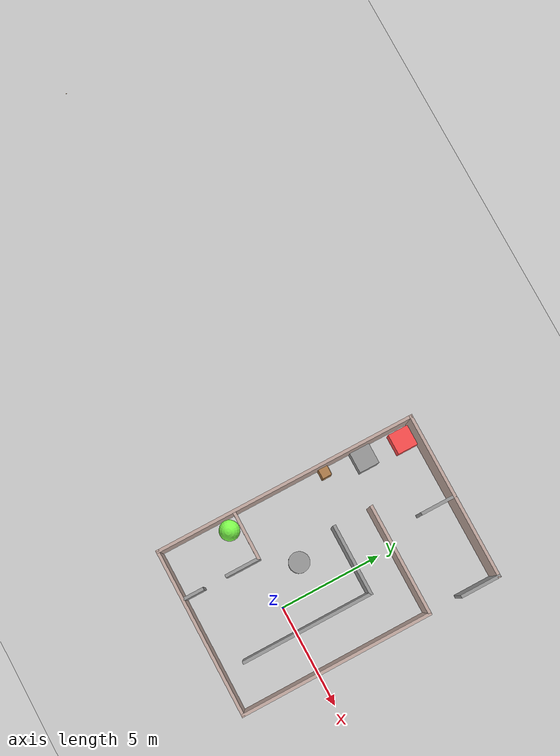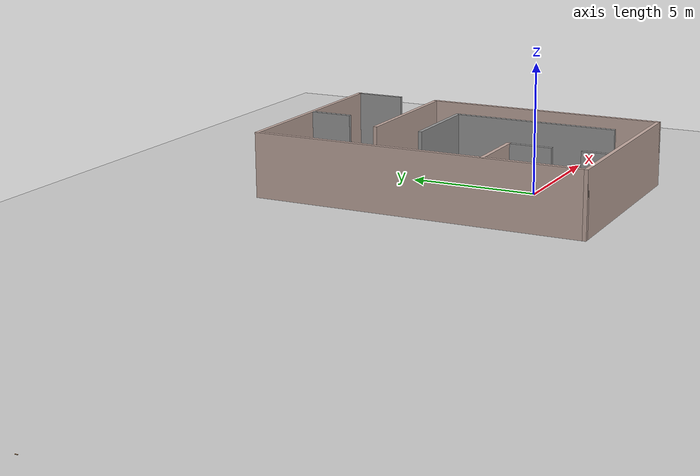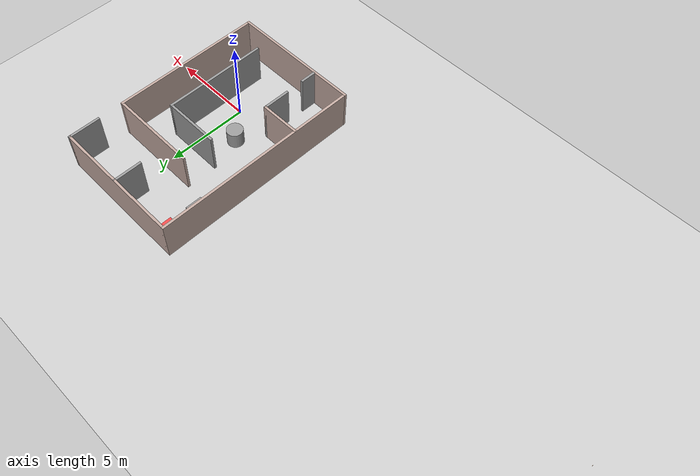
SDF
<sdf version="1.6">
 <world name="default">
  <plugin name="hello" filename="libhello.so"/>
  <light name="sun" type="directional">
   <pose>0 0 10 0 -0 0</pose>
   <diffuse>0.8 0.8 0.8 1</diffuse>
   <specular>0.2 0.2 0.2 1</specular>
   <attenuation>
    <range>1000</range>
    <constant>0.9</constant>
    <linear>0.01</linear>
    <quadratic>0.001</quadratic>
   </attenuation>
   <direction>-0.5 0.1 -0.9</direction>
  </light>
  <model name="ground_plane">
   <static>1</static>
   <link name="link">
    <collision name="collision">
     <geometry><plane><normal>0 0 1</normal><size>100 100</size></plane></geometry>
     <surface>
      <contact><collide_bitmask>65535</collide_bitmask></contact>
      <friction><ode><mu>100</mu><mu2>50</mu2></ode></friction>
     </surface>
    </collision>
    <visual name="visual">
     <cast_shadows>0</cast_shadows>
     <geometry><plane><normal>0 0 1</normal><size>100 100</size></plane></geometry>
     <material>
      <script><uri>file://media/materials/scripts/gazebo.material</uri><name>Gazebo/Grey</name></script>
     </material>
    </visual>
   </link>
  </model>
  <gravity>0 0 -9.8</gravity>
  <magnetic_field>6e-06 2.3e-05 -4.2e-05</magnetic_field>
  <atmosphere type="adiabatic"/>
  <physics name="default_physics" default="0" type="ode">
   <max_step_size>0.001</max_step_size>
   <real_time_factor>1</real_time_factor>
   <real_time_update_rate>1000</real_time_update_rate>
  </physics>
  <scene><ambient>0.4 0.4 0.4 1</ambient><background>0.7 0.7 0.7 1</background><shadows>1</shadows></scene>
  <audio><device>default</device></audio>
  <spherical_coordinates>
   <surface_model>EARTH_WGS84</surface_model>
   <latitude_deg>0</latitude_deg>
   <longitude_deg>0</longitude_deg>
   <elevation>0</elevation>
   <heading_deg>0</heading_deg>
  </spherical_coordinates>
  <model name="wooden_peg">
   <link name="link">
    <pose>0 0 0.04 0 -0 0</pose>
    <inertial>
     <mass>0.0175</mass>
     <inertia>
      <ixx>9.74923e-06</ixx>
      <ixy>0</ixy>
      <ixz>0</ixz>
      <iyy>9.74923e-06</iyy>
      <iyz>0</iyz>
      <izz>8.31797e-07</izz>
     </inertia>
    </inertial>
    <collision name="collision">
     <geometry><cylinder><radius>0.00975</radius><length>0.08</length></cylinder></geometry>
     <surface>
      <contact>
       <poissons_ratio>0.347</poissons_ratio>
       <elastic_modulus>8.8e+09</elastic_modulus>
       <ode><kp>100000</kp><kd>100</kd><max_vel>100</max_vel><min_depth>0.001</min_depth></ode>
      </contact>
      <friction>
       <torsional>
        <coefficient>1</coefficient>
        <use_patch_radius>0</use_patch_radius>
        <surface_radius>0.01</surface_radius>
       </torsional>
      </friction>
     </surface>
    </collision>
    <visual name="visual">
     <geometry><cylinder><radius>0.00975</radius><length>0.08</length></cylinder></geometry>
     <material>
      <script><uri>file://media/materials/scripts/gazebo.material</uri><name>Gazebo/Wood</name></script>
     </material>
    </visual>
   </link>
   <pose>-26.5131 2.34134 0.008749 1.5708 0.237397 3.10113</pose>
  </model>
  <model name="cabinet_0_clone_clone">
   <static>1</static>
   <link name="cabinet_bottom_plate">
    <inertial>
     <pose>0 0 -1 0 -0 0</pose>
     <inertia><ixx>2.05</ixx><ixy>0</ixy><ixz>0</ixz><iyy>2.05</iyy><iyz>0</iyz><izz>2.05</izz></inertia>
     <mass>25</mass>
    </inertial>
    <collision name="cabinet_bottom_plate_geom">
     <pose>0 0 0.01 0 -0 0</pose>
     <geometry><box><size>0.45 0.45 0.02</size></box></geometry>
    </collision>
    <visual name="cabinet_bottom_plate_geom_visual">
     <pose>0 0 0.01 0 -0 0</pose>
     <geometry><box><size>0.45 0.45 0.02</size></box></geometry>
     <material>
      <script><uri>file://media/materials/scripts/gazebo.material</uri><name>Gazebo/Wood</name></script>
     </material>
    </visual>
    <collision name="cabinet_bottom_plate_geom_cabinet_back_plate">
     <pose>0.235 0 0.51 0 -0 0</pose>
     <geometry><box><size>0.02 0.45 1.02</size></box></geometry>
    </collision>
    <visual name="cabinet_bottom_plate_geom_cabinet_back_plate_visual">
     <pose>0.235 0 0.51 0 -0 0</pose>
     <geometry><box><size>0.02 0.45 1.02</size></box></geometry>
     <material>
      <script><uri>file://media/materials/scripts/gazebo.material</uri><name>Gazebo/Wood</name></script>
     </material>
    </visual>
    <collision name="cabinet_bottom_plate_geom_cabinet_left_plate">
     <pose>0 0.235 0.51 0 -0 0</pose>
     <geometry><box><size>0.45 0.02 1.02</size></box></geometry>
    </collision>
    <visual name="cabinet_bottom_plate_geom_cabinet_left_plate_visual">
     <pose>0 0.235 0.51 0 -0 0</pose>
     <geometry><box><size>0.45 0.02 1.02</size></box></geometry>
     <material>
      <script><uri>file://media/materials/scripts/gazebo.material</uri><name>Gazebo/Wood</name></script>
     </material>
    </visual>
    <collision name="cabinet_bottom_plate_geom_cabinet_middle_plate">
     <pose>0 0 0.51 0 -0 0</pose>
     <geometry><box><size>0.45 0.45 0.02</size></box></geometry>
    </collision>
    <visual name="cabinet_bottom_plate_geom_cabinet_middle_plate_visual">
     <pose>0 0 0.51 0 -0 0</pose>
     <geometry><box><size>0.45 0.45 0.02</size></box></geometry>
     <material>
      <script><uri>file://media/materials/scripts/gazebo.material</uri><name>Gazebo/Wood</name></script>
     </material>
    </visual>
    <collision name="cabinet_bottom_plate_geom_cabinet_right_plate">
     <pose>0 -0.235 0.51 0 -0 0</pose>
     <geometry><box><size>0.45 0.02 1.02</size></box></geometry>
    </collision>
    <visual name="cabinet_bottom_plate_geom_cabinet_right_plate_visual">
     <pose>0 -0.235 0.51 0 -0 0</pose>
     <geometry><box><size>0.45 0.02 1.02</size></box></geometry>
     <material>
      <script><uri>file://media/materials/scripts/gazebo.material</uri><name>Gazebo/Wood</name></script>
     </material>
    </visual>
    <collision name="cabinet_bottom_plate_geom_cabinet_top_plate">
     <pose>0 0 1.01 0 -0 0</pose>
     <geometry><box><size>0.45 0.45 0.02</size></box></geometry>
    </collision>
    <visual name="cabinet_bottom_plate_geom_cabinet_top_plate_visual">
     <pose>0 0 1.01 0 -0 0</pose>
     <geometry><box><size>0.45 0.45 0.02</size></box></geometry>
     <material>
      <script><uri>file://media/materials/scripts/gazebo.material</uri><name>Gazebo/Wood</name></script>
     </material>
    </visual>
   </link>
   <pose>-4.51006 4.59978 0 0 -0 0</pose>
  </model>
  <model name="unit_box_1_0">
   <link name="link">
    <inertial>
     <mass>1</mass>
     <inertia>
      <ixx>0.166667</ixx>
      <ixy>0</ixy>
      <ixz>0</ixz>
      <iyy>0.166667</iyy>
      <iyz>0</iyz>
      <izz>0.166667</izz>
     </inertia>
    </inertial>
    <visual name="visual">
     <geometry><box><size>1 1 1</size></box></geometry>
     <material>
      <script><name>Gazebo/Grey</name><uri>file://media/materials/scripts/gazebo.material</uri></script>
      <ambient>1 0.3 0.3 1</ambient>
      <diffuse>0.7 0.7 0.7 1</diffuse>
      <specular>0.01 0.01 0.01 1</specular>
      <emissive>0 0 0 1</emissive>
      <shader type="vertex"><normal_map>__default__</normal_map></shader>
     </material>
    </visual>
    <collision name="collision">
     <geometry><box><size>1 1 1</size></box></geometry>
     <surface>
      <friction>
       <ode><mu>1</mu><mu2>1</mu2><fdir1>0 0 0</fdir1><slip1>0</slip1><slip2>0</slip2></ode>
       <torsional>
        <coefficient>1</coefficient>
        <patch_radius>0</patch_radius>
        <surface_radius>0</surface_radius>
        <use_patch_radius>1</use_patch_radius>
        <ode><slip>0</slip></ode>
       </torsional>
      </friction>
      <bounce><restitution_coefficient>0</restitution_coefficient><threshold>1e+06</threshold></bounce>
      <contact>
       <collide_without_contact>0</collide_without_contact>
       <collide_without_contact_bitmask>1</collide_without_contact_bitmask>
       <collide_bitmask>1</collide_bitmask>
       <ode>
        <soft_cfm>0</soft_cfm>
        <soft_erp>0.2</soft_erp>
        <kp>1e+13</kp>
        <kd>1</kd>
        <max_vel>0.01</max_vel>
        <min_depth>0</min_depth>
       </ode>
       <bullet>
        <split_impulse>1</split_impulse>
        <split_impulse_penetration_threshold>-0.01</split_impulse_penetration_threshold>
        <soft_cfm>0</soft_cfm>
        <soft_erp>0.2</soft_erp>
        <kp>1e+13</kp>
        <kd>1</kd>
       </bullet>
      </contact>
     </surface>
    </collision>
   </link>
   <static>0</static>
   <pose>-4.14081 8.46994 0.499995 -1e-05 -0 2e-06</pose>
  </model>
  <model name="unit_sphere_0_0">
   <link name="link">
    <inertial>
     <mass>1</mass>
     <inertia><ixx>0.1</ixx><ixy>0</ixy><ixz>0</ixz><iyy>0.1</iyy><iyz>0</iyz><izz>0.1</izz></inertia>
    </inertial>
    <visual name="visual">
     <geometry><sphere><radius>0.5</radius></sphere></geometry>
     <material>
      <script><name>Gazebo/Grey</name><uri>file://media/materials/scripts/gazebo.material</uri></script>
      <ambient>0.5 1 0.3 1</ambient>
      <diffuse>0.7 0.7 0.7 1</diffuse>
      <specular>0.01 0.01 0.01 1</specular>
      <emissive>0 0 0 1</emissive>
      <shader type="vertex"><normal_map>__default__</normal_map></shader>
     </material>
    </visual>
    <collision name="collision">
     <geometry><sphere><radius>0.5</radius></sphere></geometry>
     <surface>
      <friction>
       <ode><mu>1</mu><mu2>1</mu2><fdir1>0 0 0</fdir1><slip1>0</slip1><slip2>0</slip2></ode>
       <torsional>
        <coefficient>1</coefficient>
        <patch_radius>0</patch_radius>
        <surface_radius>0</surface_radius>
        <use_patch_radius>1</use_patch_radius>
        <ode><slip>0</slip></ode>
       </torsional>
      </friction>
      <bounce><restitution_coefficient>0</restitution_coefficient><threshold>1e+06</threshold></bounce>
      <contact>
       <collide_without_contact>0</collide_without_contact>
       <collide_without_contact_bitmask>1</collide_without_contact_bitmask>
       <collide_bitmask>1</collide_bitmask>
       <ode>
        <soft_cfm>0</soft_cfm>
        <soft_erp>0.2</soft_erp>
        <kp>1e+13</kp>
        <kd>1</kd>
        <max_vel>0.01</max_vel>
        <min_depth>0</min_depth>
       </ode>
       <bullet>
        <split_impulse>1</split_impulse>
        <split_impulse_penetration_threshold>-0.01</split_impulse_penetration_threshold>
        <soft_cfm>0</soft_cfm>
        <soft_erp>0.2</soft_erp>
        <kp>1e+13</kp>
        <kd>1</kd>
       </bullet>
      </contact>
     </surface>
    </collision>
   </link>
   <static>0</static>
   <pose>-4.23931 -0.500517 0.5 0.165014 0.102597 0.003022</pose>
  </model>
  <model name="unit_box_0">
   <pose>-4.22387 6.50474 0.499995 0 1e-05 0.00041</pose>
   <link name="link">
    <inertial>
     <mass>1</mass>
     <inertia>
      <ixx>0.166667</ixx>
      <ixy>0</ixy>
      <ixz>0</ixz>
      <iyy>0.166667</iyy>
      <iyz>0</iyz>
      <izz>0.166667</izz>
     </inertia>
    </inertial>
    <collision name="collision"><geometry><box><size>1 1 1</size></box></geometry></collision>
    <visual name="visual">
     <geometry><box><size>1 1 1</size></box></geometry>
     <material>
      <script><name>Gazebo/Grey</name><uri>file://media/materials/scripts/gazebo.material</uri></script>
     </material>
    </visual>
   </link>
  </model>
  <model name="unit_cylinder_1_0">
   <link name="link">
    <inertial>
     <mass>1</mass>
     <inertia><ixx>0.145833</ixx><ixy>0</ixy><ixz>0</ixz><iyy>0.145833</iyy><iyz>0</iyz><izz>0.125</izz></inertia>
    </inertial>
    <visual name="visual">
     <geometry><cylinder><radius>0.5</radius><length>1</length></cylinder></geometry>
     <material>
      <script><name>Gazebo/Grey</name><uri>file://media/materials/scripts/gazebo.material</uri></script>
      <ambient>1 1 1 1</ambient>
      <diffuse>0.7 0.7 0.7 1</diffuse>
      <specular>0.01 0.01 0.01 1</specular>
      <emissive>0 0 0 1</emissive>
      <shader type="vertex"><normal_map>__default__</normal_map></shader>
     </material>
    </visual>
    <collision name="collision">
     <geometry><cylinder><radius>0.5</radius><length>1</length></cylinder></geometry>
     <surface>
      <friction>
       <ode><mu>1</mu><mu2>1</mu2><fdir1>0 0 0</fdir1><slip1>0</slip1><slip2>0</slip2></ode>
       <torsional>
        <coefficient>1</coefficient>
        <patch_radius>0</patch_radius>
        <surface_radius>0</surface_radius>
        <use_patch_radius>1</use_patch_radius>
        <ode><slip>0</slip></ode>
       </torsional>
      </friction>
      <bounce><restitution_coefficient>0</restitution_coefficient><threshold>1e+06</threshold></bounce>
      <contact>
       <collide_without_contact>0</collide_without_contact>
       <collide_without_contact_bitmask>1</collide_without_contact_bitmask>
       <collide_bitmask>1</collide_bitmask>
       <ode>
        <soft_cfm>0</soft_cfm>
        <soft_erp>0.2</soft_erp>
        <kp>1e+13</kp>
        <kd>1</kd>
        <max_vel>0.01</max_vel>
        <min_depth>0</min_depth>
       </ode>
       <bullet>
        <split_impulse>1</split_impulse>
        <split_impulse_penetration_threshold>-0.01</split_impulse_penetration_threshold>
        <soft_cfm>0</soft_cfm>
        <soft_erp>0.2</soft_erp>
        <kp>1e+13</kp>
        <kd>1</kd>
       </bullet>
      </contact>
     </surface>
    </collision>
   </link>
   <static>0</static>
   <pose>-1.45051 1.6207 0.499998 3e-06 3e-06 -0.02605</pose>
  </model>
  <model name="building_0">
   <link name="Wall_19">
    <pose>5.63923 -6.425 0 0 -0 0</pose>
    <visual name="Wall_19_Visual">
     <pose>0 0 1.25 0 -0 0</pose>
     <geometry><box><size>8.25 0.15 2.5</size></box></geometry>
     <material>
      <script><uri>file://media/materials/scripts/gazebo.material</uri><name>Gazebo/Grey</name></script>
      <ambient>0.760784 0.662745 0.627451 1</ambient>
      <diffuse>0.7 0.7 0.7 1</diffuse>
      <specular>0.01 0.01 0.01 1</specular>
      <emissive>0 0 0 1</emissive>
     </material>
    </visual>
    <collision name="Wall_19_Collision">
     <pose>0 0 1.25 0 -0 0</pose>
     <geometry><box><size>8.25 0.15 2.5</size></box></geometry>
     <surface>
      <friction>
       <ode><mu>1</mu><mu2>1</mu2><fdir1>0 0 0</fdir1><slip1>0</slip1><slip2>0</slip2></ode>
       <torsional>
        <coefficient>1</coefficient>
        <patch_radius>0</patch_radius>
        <surface_radius>0</surface_radius>
        <use_patch_radius>1</use_patch_radius>
        <ode><slip>0</slip></ode>
       </torsional>
      </friction>
      <bounce><restitution_coefficient>0</restitution_coefficient><threshold>1e+06</threshold></bounce>
      <contact>
       <collide_without_contact>0</collide_without_contact>
       <collide_without_contact_bitmask>1</collide_without_contact_bitmask>
       <collide_bitmask>1</collide_bitmask>
       <ode>
        <soft_cfm>0</soft_cfm>
        <soft_erp>0.2</soft_erp>
        <kp>1e+13</kp>
        <kd>1</kd>
        <max_vel>0.01</max_vel>
        <min_depth>0</min_depth>
       </ode>
       <bullet>
        <split_impulse>1</split_impulse>
        <split_impulse_penetration_threshold>-0.01</split_impulse_penetration_threshold>
        <soft_cfm>0</soft_cfm>
        <soft_erp>0.2</soft_erp>
        <kp>1e+13</kp>
        <kd>1</kd>
       </bullet>
      </contact>
     </surface>
    </collision>
   </link>
   <link name="Wall_20">
    <pose>9.68923 -1.75 0 0 -0 1.5708</pose>
    <visual name="Wall_20_Visual">
     <pose>0 0 1.25 0 -0 0</pose>
     <geometry><box><size>9.5 0.15 2.5</size></box></geometry>
     <material>
      <script><uri>file://media/materials/scripts/gazebo.material</uri><name>Gazebo/Grey</name></script>
      <ambient>0.760784 0.662745 0.627451 1</ambient>
      <diffuse>0.7 0.7 0.7 1</diffuse>
      <specular>0.01 0.01 0.01 1</specular>
      <emissive>0 0 0 1</emissive>
     </material>
    </visual>
    <collision name="Wall_20_Collision">
     <pose>0 0 1.25 0 -0 0</pose>
     <geometry><box><size>9.5 0.15 2.5</size></box></geometry>
     <surface>
      <friction>
       <ode><mu>1</mu><mu2>1</mu2><fdir1>0 0 0</fdir1><slip1>0</slip1><slip2>0</slip2></ode>
       <torsional>
        <coefficient>1</coefficient>
        <patch_radius>0</patch_radius>
        <surface_radius>0</surface_radius>
        <use_patch_radius>1</use_patch_radius>
        <ode><slip>0</slip></ode>
       </torsional>
      </friction>
      <bounce><restitution_coefficient>0</restitution_coefficient><threshold>1e+06</threshold></bounce>
      <contact>
       <collide_without_contact>0</collide_without_contact>
       <collide_without_contact_bitmask>1</collide_without_contact_bitmask>
       <collide_bitmask>1</collide_bitmask>
       <ode>
        <soft_cfm>0</soft_cfm>
        <soft_erp>0.2</soft_erp>
        <kp>1e+13</kp>
        <kd>1</kd>
        <max_vel>0.01</max_vel>
        <min_depth>0</min_depth>
       </ode>
       <bullet>
        <split_impulse>1</split_impulse>
        <split_impulse_penetration_threshold>-0.01</split_impulse_penetration_threshold>
        <soft_cfm>0</soft_cfm>
        <soft_erp>0.2</soft_erp>
        <kp>1e+13</kp>
        <kd>1</kd>
       </bullet>
      </contact>
     </surface>
    </collision>
   </link>
   <link name="Wall_21">
    <pose>7.01423 2.925 0 0 -0 3.14159</pose>
    <visual name="Wall_21_Visual">
     <pose>0 0 1.25 0 -0 0</pose>
     <geometry><box><size>5.5 0.15 2.5</size></box></geometry>
     <material>
      <script><uri>file://media/materials/scripts/gazebo.material</uri><name>Gazebo/Grey</name></script>
      <ambient>0.760784 0.662745 0.627451 1</ambient>
      <diffuse>0.7 0.7 0.7 1</diffuse>
      <specular>0.01 0.01 0.01 1</specular>
      <emissive>0 0 0 1</emissive>
     </material>
    </visual>
    <collision name="Wall_21_Collision">
     <pose>0 0 1.25 0 -0 0</pose>
     <geometry><box><size>5.5 0.15 2.5</size></box></geometry>
     <surface>
      <friction>
       <ode><mu>1</mu><mu2>1</mu2><fdir1>0 0 0</fdir1><slip1>0</slip1><slip2>0</slip2></ode>
       <torsional>
        <coefficient>1</coefficient>
        <patch_radius>0</patch_radius>
        <surface_radius>0</surface_radius>
        <use_patch_radius>1</use_patch_radius>
        <ode><slip>0</slip></ode>
       </torsional>
      </friction>
      <bounce><restitution_coefficient>0</restitution_coefficient><threshold>1e+06</threshold></bounce>
      <contact>
       <collide_without_contact>0</collide_without_contact>
       <collide_without_contact_bitmask>1</collide_without_contact_bitmask>
       <collide_bitmask>1</collide_bitmask>
       <ode>
        <soft_cfm>0</soft_cfm>
        <soft_erp>0.2</soft_erp>
        <kp>1e+13</kp>
        <kd>1</kd>
        <max_vel>0.01</max_vel>
        <min_depth>0</min_depth>
       </ode>
       <bullet>
        <split_impulse>1</split_impulse>
        <split_impulse_penetration_threshold>-0.01</split_impulse_penetration_threshold>
        <soft_cfm>0</soft_cfm>
        <soft_erp>0.2</soft_erp>
        <kp>1e+13</kp>
        <kd>1</kd>
       </bullet>
      </contact>
     </surface>
    </collision>
   </link>
   <link name="Wall_23">
    <pose>1.58923 0 0 0 -0 1.5708</pose>
    <visual name="Wall_23_Visual">
     <pose>0 0 1.25 0 -0 0</pose>
     <geometry><box><size>13 0.15 2.5</size></box></geometry>
     <material>
      <script><uri>file://media/materials/scripts/gazebo.material</uri><name>Gazebo/Grey</name></script>
      <ambient>0.760784 0.662745 0.627451 1</ambient>
      <diffuse>0.7 0.7 0.7 1</diffuse>
      <specular>0.01 0.01 0.01 1</specular>
      <emissive>0 0 0 1</emissive>
     </material>
    </visual>
    <collision name="Wall_23_Collision">
     <pose>0 0 1.25 0 -0 0</pose>
     <geometry><box><size>13 0.15 2.5</size></box></geometry>
     <surface>
      <friction>
       <ode><mu>1</mu><mu2>1</mu2><fdir1>0 0 0</fdir1><slip1>0</slip1><slip2>0</slip2></ode>
       <torsional>
        <coefficient>1</coefficient>
        <patch_radius>0</patch_radius>
        <surface_radius>0</surface_radius>
        <use_patch_radius>1</use_patch_radius>
        <ode><slip>0</slip></ode>
       </torsional>
      </friction>
      <bounce><restitution_coefficient>0</restitution_coefficient><threshold>1e+06</threshold></bounce>
      <contact>
       <collide_without_contact>0</collide_without_contact>
       <collide_without_contact_bitmask>1</collide_without_contact_bitmask>
       <collide_bitmask>1</collide_bitmask>
       <ode>
        <soft_cfm>0</soft_cfm>
        <soft_erp>0.2</soft_erp>
        <kp>1e+13</kp>
        <kd>1</kd>
        <max_vel>0.01</max_vel>
        <min_depth>0</min_depth>
       </ode>
       <bullet>
        <split_impulse>1</split_impulse>
        <split_impulse_penetration_threshold>-0.01</split_impulse_penetration_threshold>
        <soft_cfm>0</soft_cfm>
        <soft_erp>0.2</soft_erp>
        <kp>1e+13</kp>
        <kd>1</kd>
       </bullet>
      </contact>
     </surface>
    </collision>
   </link>
   <link name="Wall_24">
    <pose>5.63923 6.425 0 0 -0 0</pose>
    <visual name="Wall_24_Visual">
     <pose>0 0 1.25 0 -0 0</pose>
     <geometry><box><size>8.25 0.15 2.5</size></box></geometry>
     <material>
      <script><uri>file://media/materials/scripts/gazebo.material</uri><name>Gazebo/Grey</name></script>
      <ambient>0.760784 0.662745 0.627451 1</ambient>
      <diffuse>0.7 0.7 0.7 1</diffuse>
      <specular>0.01 0.01 0.01 1</specular>
      <emissive>0 0 0 1</emissive>
     </material>
    </visual>
    <collision name="Wall_24_Collision">
     <pose>0 0 1.25 0 -0 0</pose>
     <geometry><box><size>8.25 0.15 2.5</size></box></geometry>
     <surface>
      <friction>
       <ode><mu>1</mu><mu2>1</mu2><fdir1>0 0 0</fdir1><slip1>0</slip1><slip2>0</slip2></ode>
       <torsional>
        <coefficient>1</coefficient>
        <patch_radius>0</patch_radius>
        <surface_radius>0</surface_radius>
        <use_patch_radius>1</use_patch_radius>
        <ode><slip>0</slip></ode>
       </torsional>
      </friction>
      <bounce><restitution_coefficient>0</restitution_coefficient><threshold>1e+06</threshold></bounce>
      <contact>
       <collide_without_contact>0</collide_without_contact>
       <collide_without_contact_bitmask>1</collide_without_contact_bitmask>
       <collide_bitmask>1</collide_bitmask>
       <ode>
        <soft_cfm>0</soft_cfm>
        <soft_erp>0.2</soft_erp>
        <kp>1e+13</kp>
        <kd>1</kd>
        <max_vel>0.01</max_vel>
        <min_depth>0</min_depth>
       </ode>
       <bullet>
        <split_impulse>1</split_impulse>
        <split_impulse_penetration_threshold>-0.01</split_impulse_penetration_threshold>
        <soft_cfm>0</soft_cfm>
        <soft_erp>0.2</soft_erp>
        <kp>1e+13</kp>
        <kd>1</kd>
       </bullet>
      </contact>
     </surface>
    </collision>
   </link>
   <link name="Wall_25">
    <pose>9.68923 5.5 0 0 0 -1.5708</pose>
    <visual name="Wall_25_Visual">
     <pose>0 0 1.25 0 -0 0</pose>
     <geometry><box><size>2 0.15 2.5</size></box></geometry>
     <material>
      <script><uri>file://media/materials/scripts/gazebo.material</uri><name>Gazebo/Grey</name></script>
      <ambient>0 0 0 1</ambient>
      <diffuse>0.7 0.7 0.7 1</diffuse>
      <specular>0.01 0.01 0.01 1</specular>
      <emissive>0 0 0 1</emissive>
     </material>
    </visual>
    <collision name="Wall_25_Collision">
     <pose>0 0 1.25 0 -0 0</pose>
     <geometry><box><size>2 0.15 2.5</size></box></geometry>
     <surface>
      <friction>
       <ode><mu>1</mu><mu2>1</mu2><fdir1>0 0 0</fdir1><slip1>0</slip1><slip2>0</slip2></ode>
       <torsional>
        <coefficient>1</coefficient>
        <patch_radius>0</patch_radius>
        <surface_radius>0</surface_radius>
        <use_patch_radius>1</use_patch_radius>
        <ode><slip>0</slip></ode>
       </torsional>
      </friction>
      <bounce><restitution_coefficient>0</restitution_coefficient><threshold>1e+06</threshold></bounce>
      <contact>
       <collide_without_contact>0</collide_without_contact>
       <collide_without_contact_bitmask>1</collide_without_contact_bitmask>
       <collide_bitmask>1</collide_bitmask>
       <ode>
        <soft_cfm>0</soft_cfm>
        <soft_erp>0.2</soft_erp>
        <kp>1e+13</kp>
        <kd>1</kd>
        <max_vel>0.01</max_vel>
        <min_depth>0</min_depth>
       </ode>
       <bullet>
        <split_impulse>1</split_impulse>
        <split_impulse_penetration_threshold>-0.01</split_impulse_penetration_threshold>
        <soft_cfm>0</soft_cfm>
        <soft_erp>0.2</soft_erp>
        <kp>1e+13</kp>
        <kd>1</kd>
       </bullet>
      </contact>
     </surface>
    </collision>
   </link>
   <link name="Wall_28">
    <pose>6.00799 1.04651 0 0 -0 0</pose>
    <visual name="Wall_28_Visual">
     <pose>0 0 1.25 0 -0 0</pose>
     <geometry><box><size>3.5 0.15 2.5</size></box></geometry>
     <material>
      <script><uri>file://media/materials/scripts/gazebo.material</uri><name>Gazebo/Grey</name></script>
      <ambient>0 0 0 1</ambient>
      <diffuse>0.7 0.7 0.7 1</diffuse>
      <specular>0.01 0.01 0.01 1</specular>
      <emissive>0 0 0 1</emissive>
     </material>
    </visual>
    <collision name="Wall_28_Collision">
     <pose>0 0 1.25 0 -0 0</pose>
     <geometry><box><size>3.5 0.15 2.5</size></box></geometry>
     <surface>
      <friction>
       <ode><mu>1</mu><mu2>1</mu2><fdir1>0 0 0</fdir1><slip1>0</slip1><slip2>0</slip2></ode>
       <torsional>
        <coefficient>1</coefficient>
        <patch_radius>0</patch_radius>
        <surface_radius>0</surface_radius>
        <use_patch_radius>1</use_patch_radius>
        <ode><slip>0</slip></ode>
       </torsional>
      </friction>
      <bounce><restitution_coefficient>0</restitution_coefficient><threshold>1e+06</threshold></bounce>
      <contact>
       <collide_without_contact>0</collide_without_contact>
       <collide_without_contact_bitmask>1</collide_without_contact_bitmask>
       <collide_bitmask>1</collide_bitmask>
       <ode>
        <soft_cfm>0</soft_cfm>
        <soft_erp>0.2</soft_erp>
        <kp>1e+13</kp>
        <kd>1</kd>
        <max_vel>0.01</max_vel>
        <min_depth>0</min_depth>
       </ode>
       <bullet>
        <split_impulse>1</split_impulse>
        <split_impulse_penetration_threshold>-0.01</split_impulse_penetration_threshold>
        <soft_cfm>0</soft_cfm>
        <soft_erp>0.2</soft_erp>
        <kp>1e+13</kp>
        <kd>1</kd>
       </bullet>
      </contact>
     </surface>
    </collision>
   </link>
   <link name="Wall_30">
    <pose>7.68299 -2.12849 0 0 0 -1.5708</pose>
    <visual name="Wall_30_Visual">
     <pose>0 0 1.25 0 -0 0</pose>
     <geometry><box><size>6.5 0.15 2.5</size></box></geometry>
     <material>
      <script><uri>file://media/materials/scripts/gazebo.material</uri><name>Gazebo/Grey</name></script>
      <ambient>0 0 0 1</ambient>
      <diffuse>0.7 0.7 0.7 1</diffuse>
      <specular>0.01 0.01 0.01 1</specular>
      <emissive>0 0 0 1</emissive>
     </material>
    </visual>
    <collision name="Wall_30_Collision">
     <pose>0 0 1.25 0 -0 0</pose>
     <geometry><box><size>6.5 0.15 2.5</size></box></geometry>
     <surface>
      <friction>
       <ode><mu>1</mu><mu2>1</mu2><fdir1>0 0 0</fdir1><slip1>0</slip1><slip2>0</slip2></ode>
       <torsional>
        <coefficient>1</coefficient>
        <patch_radius>0</patch_radius>
        <surface_radius>0</surface_radius>
        <use_patch_radius>1</use_patch_radius>
        <ode><slip>0</slip></ode>
       </torsional>
      </friction>
      <bounce><restitution_coefficient>0</restitution_coefficient><threshold>1e+06</threshold></bounce>
      <contact>
       <collide_without_contact>0</collide_without_contact>
       <collide_without_contact_bitmask>1</collide_without_contact_bitmask>
       <collide_bitmask>1</collide_bitmask>
       <ode>
        <soft_cfm>0</soft_cfm>
        <soft_erp>0.2</soft_erp>
        <kp>1e+13</kp>
        <kd>1</kd>
        <max_vel>0.01</max_vel>
        <min_depth>0</min_depth>
       </ode>
       <bullet>
        <split_impulse>1</split_impulse>
        <split_impulse_penetration_threshold>-0.01</split_impulse_penetration_threshold>
        <soft_cfm>0</soft_cfm>
        <soft_erp>0.2</soft_erp>
        <kp>1e+13</kp>
        <kd>1</kd>
       </bullet>
      </contact>
     </surface>
    </collision>
   </link>
   <link name="Wall_35">
    <pose>2.79656 -2.60704 0 0 -0 0</pose>
    <visual name="Wall_35_Visual">
     <pose>0 0 1.25 0 -0 0</pose>
     <geometry><box><size>2.5 0.15 2.5</size></box></geometry>
     <material>
      <script><uri>file://media/materials/scripts/gazebo.material</uri><name>Gazebo/Grey</name></script>
      <ambient>0.760784 0.662745 0.627451 1</ambient>
      <diffuse>0.7 0.7 0.7 1</diffuse>
      <specular>0.01 0.01 0.01 1</specular>
      <emissive>0 0 0 1</emissive>
     </material>
    </visual>
    <collision name="Wall_35_Collision">
     <pose>0 0 1.25 0 -0 0</pose>
     <geometry><box><size>2.5 0.15 2.5</size></box></geometry>
     <surface>
      <friction>
       <ode><mu>1</mu><mu2>1</mu2><fdir1>0 0 0</fdir1><slip1>0</slip1><slip2>0</slip2></ode>
       <torsional>
        <coefficient>1</coefficient>
        <patch_radius>0</patch_radius>
        <surface_radius>0</surface_radius>
        <use_patch_radius>1</use_patch_radius>
        <ode><slip>0</slip></ode>
       </torsional>
      </friction>
      <bounce><restitution_coefficient>0</restitution_coefficient><threshold>1e+06</threshold></bounce>
      <contact>
       <collide_without_contact>0</collide_without_contact>
       <collide_without_contact_bitmask>1</collide_without_contact_bitmask>
       <collide_bitmask>1</collide_bitmask>
       <ode>
        <soft_cfm>0</soft_cfm>
        <soft_erp>0.2</soft_erp>
        <kp>1e+13</kp>
        <kd>1</kd>
        <max_vel>0.01</max_vel>
        <min_depth>0</min_depth>
       </ode>
       <bullet>
        <split_impulse>1</split_impulse>
        <split_impulse_penetration_threshold>-0.01</split_impulse_penetration_threshold>
        <soft_cfm>0</soft_cfm>
        <soft_erp>0.2</soft_erp>
        <kp>1e+13</kp>
        <kd>1</kd>
       </bullet>
      </contact>
     </surface>
    </collision>
   </link>
   <link name="Wall_36">
    <pose>3.97156 -3.40704 0 0 0 -1.5708</pose>
    <visual name="Wall_36_Visual">
     <pose>0 0 1.25 0 -0 0</pose>
     <geometry><box><size>1.75 0.15 2.5</size></box></geometry>
     <material>
      <script><uri>file://media/materials/scripts/gazebo.material</uri><name>Gazebo/Grey</name></script>
      <ambient>0 0 0 1</ambient>
      <diffuse>0.7 0.7 0.7 1</diffuse>
      <specular>0.01 0.01 0.01 1</specular>
      <emissive>0 0 0 1</emissive>
     </material>
    </visual>
    <collision name="Wall_36_Collision">
     <pose>0 0 1.25 0 -0 0</pose>
     <geometry><box><size>1.75 0.15 2.5</size></box></geometry>
     <surface>
      <friction>
       <ode><mu>1</mu><mu2>1</mu2><fdir1>0 0 0</fdir1><slip1>0</slip1><slip2>0</slip2></ode>
       <torsional>
        <coefficient>1</coefficient>
        <patch_radius>0</patch_radius>
        <surface_radius>0</surface_radius>
        <use_patch_radius>1</use_patch_radius>
        <ode><slip>0</slip></ode>
       </torsional>
      </friction>
      <bounce><restitution_coefficient>0</restitution_coefficient><threshold>1e+06</threshold></bounce>
      <contact>
       <collide_without_contact>0</collide_without_contact>
       <collide_without_contact_bitmask>1</collide_without_contact_bitmask>
       <collide_bitmask>1</collide_bitmask>
       <ode>
        <soft_cfm>0</soft_cfm>
        <soft_erp>0.2</soft_erp>
        <kp>1e+13</kp>
        <kd>1</kd>
        <max_vel>0.01</max_vel>
        <min_depth>0</min_depth>
       </ode>
       <bullet>
        <split_impulse>1</split_impulse>
        <split_impulse_penetration_threshold>-0.01</split_impulse_penetration_threshold>
        <soft_cfm>0</soft_cfm>
        <soft_erp>0.2</soft_erp>
        <kp>1e+13</kp>
        <kd>1</kd>
       </bullet>
      </contact>
     </surface>
    </collision>
   </link>
   <link name="Wall_38">
    <pose>3.98904 -5.88378 0 0 0 -1.5708</pose>
    <visual name="Wall_38_Visual">
     <pose>0 0 1.25 0 -0 0</pose>
     <geometry><box><size>1 0.15 2.5</size></box></geometry>
     <material>
      <script><uri>file://media/materials/scripts/gazebo.material</uri><name>Gazebo/Grey</name></script>
      <ambient>0 0 0 1</ambient>
      <diffuse>0.7 0.7 0.7 1</diffuse>
      <specular>0.01 0.01 0.01 1</specular>
      <emissive>0 0 0 1</emissive>
     </material>
    </visual>
    <collision name="Wall_38_Collision">
     <pose>0 0 1.25 0 -0 0</pose>
     <geometry><box><size>1 0.15 2.5</size></box></geometry>
     <surface>
      <friction>
       <ode><mu>1</mu><mu2>1</mu2><fdir1>0 0 0</fdir1><slip1>0</slip1><slip2>0</slip2></ode>
       <torsional>
        <coefficient>1</coefficient>
        <patch_radius>0</patch_radius>
        <surface_radius>0</surface_radius>
        <use_patch_radius>1</use_patch_radius>
        <ode><slip>0</slip></ode>
       </torsional>
      </friction>
      <bounce><restitution_coefficient>0</restitution_coefficient><threshold>1e+06</threshold></bounce>
      <contact>
       <collide_without_contact>0</collide_without_contact>
       <collide_without_contact_bitmask>1</collide_without_contact_bitmask>
       <collide_bitmask>1</collide_bitmask>
       <ode>
        <soft_cfm>0</soft_cfm>
        <soft_erp>0.2</soft_erp>
        <kp>1e+13</kp>
        <kd>1</kd>
        <max_vel>0.01</max_vel>
        <min_depth>0</min_depth>
       </ode>
       <bullet>
        <split_impulse>1</split_impulse>
        <split_impulse_penetration_threshold>-0.01</split_impulse_penetration_threshold>
        <soft_cfm>0</soft_cfm>
        <soft_erp>0.2</soft_erp>
        <kp>1e+13</kp>
        <kd>1</kd>
       </bullet>
      </contact>
     </surface>
    </collision>
   </link>
   <link name="Wall_40">
    <pose>5.65051 5.59302 0 0 0 -1.5708</pose>
    <visual name="Wall_40_Visual">
     <pose>0 0 1.25 0 -0 0</pose>
     <geometry><box><size>1.75 0.15 2.5</size></box></geometry>
     <material>
      <script><uri>file://media/materials/scripts/gazebo.material</uri><name>Gazebo/Grey</name></script>
      <ambient>0 0 0 1</ambient>
      <diffuse>0.7 0.7 0.7 1</diffuse>
      <specular>0.01 0.01 0.01 1</specular>
      <emissive>0 0 0 1</emissive>
     </material>
    </visual>
    <collision name="Wall_40_Collision">
     <pose>0 0 1.25 0 -0 0</pose>
     <geometry><box><size>1.75 0.15 2.5</size></box></geometry>
     <surface>
      <friction>
       <ode><mu>1</mu><mu2>1</mu2><fdir1>0 0 0</fdir1><slip1>0</slip1><slip2>0</slip2></ode>
       <torsional>
        <coefficient>1</coefficient>
        <patch_radius>0</patch_radius>
        <surface_radius>0</surface_radius>
        <use_patch_radius>1</use_patch_radius>
        <ode><slip>0</slip></ode>
       </torsional>
      </friction>
      <bounce><restitution_coefficient>0</restitution_coefficient><threshold>1e+06</threshold></bounce>
      <contact>
       <collide_without_contact>0</collide_without_contact>
       <collide_without_contact_bitmask>1</collide_without_contact_bitmask>
       <collide_bitmask>1</collide_bitmask>
       <ode>
        <soft_cfm>0</soft_cfm>
        <soft_erp>0.2</soft_erp>
        <kp>1e+13</kp>
        <kd>1</kd>
        <max_vel>0.01</max_vel>
        <min_depth>0</min_depth>
       </ode>
       <bullet>
        <split_impulse>1</split_impulse>
        <split_impulse_penetration_threshold>-0.01</split_impulse_penetration_threshold>
        <soft_cfm>0</soft_cfm>
        <soft_erp>0.2</soft_erp>
        <kp>1e+13</kp>
        <kd>1</kd>
       </bullet>
      </contact>
     </surface>
    </collision>
   </link>
   <static>1</static>
   <pose>-6.40455 2.68152 0 0 -0 0</pose>
  </model>
 </world>
</sdf>
